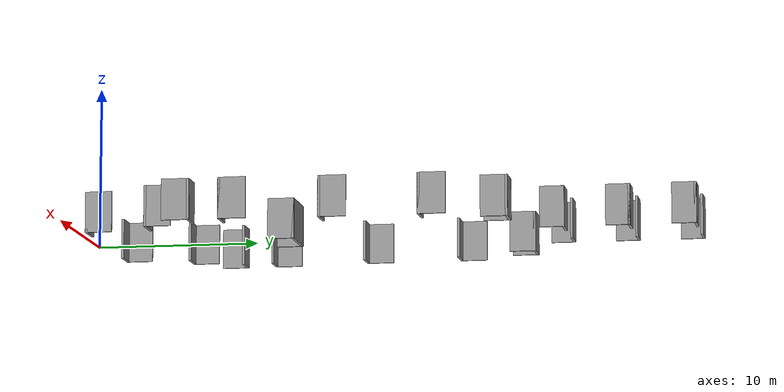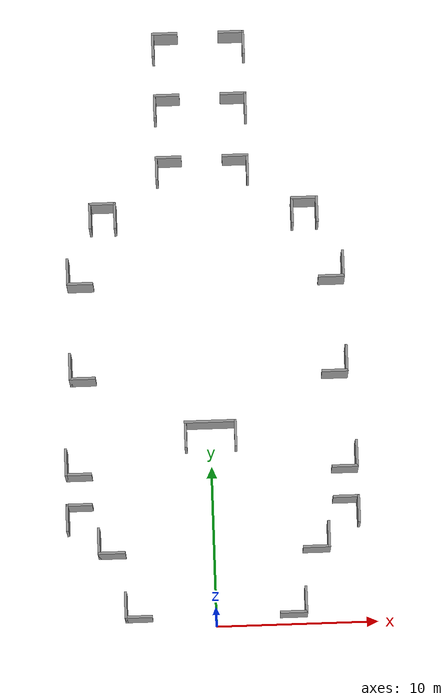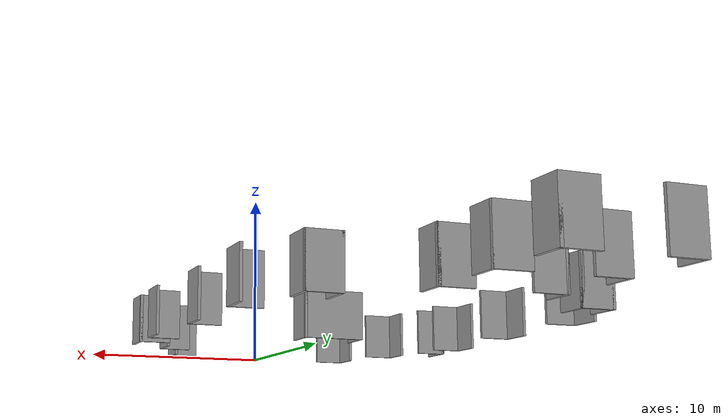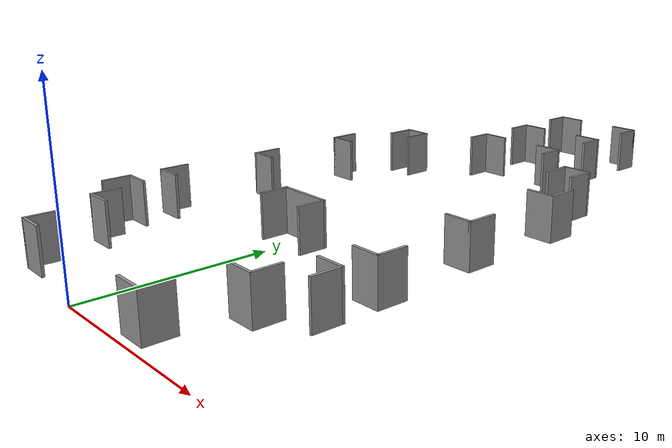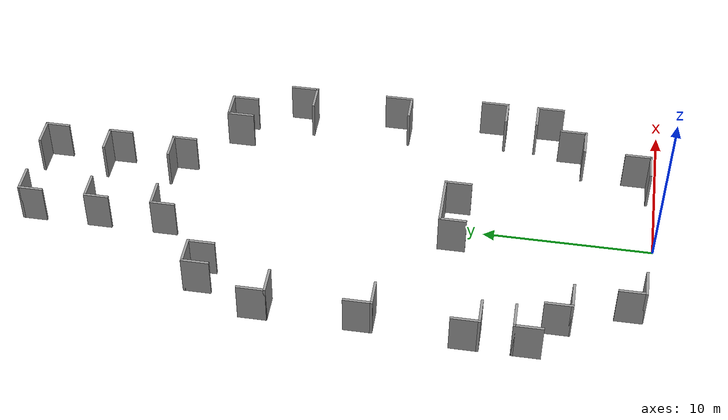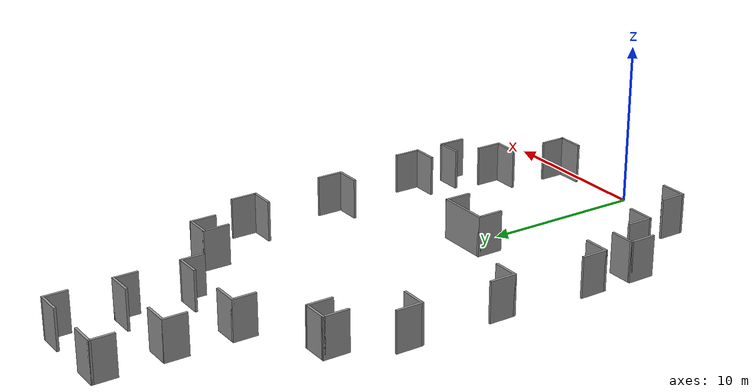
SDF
<?xml version='1.0'?>
<sdf version='1.6'>
  <model name='hospital_restriction_walls'>
    <pose frame=''>0 18.925 0 0 -0 0</pose>
    <link name='Wall_10'>
      <collision name='Wall_10_Collision'>
        <geometry>
          <box>
            <size>1.7 0.15 2.5</size>
          </box>
        </geometry>
        <pose frame=''>0 0 1.25 0 -0 0</pose>
      </collision>
      <visual name='Wall_10_Visual'>
        <pose frame=''>0 0 1.25 0 -0 0</pose>
        <geometry>
          <box>
            <size>1.7 0.15 2.5</size>
          </box>
        </geometry>
        <material>
          <script>
            <uri>file://media/materials/scripts/gazebo.material</uri>
            <name>Gazebo/Grey</name>
          </script>
          <ambient>1 1 1 1</ambient>
        </material>
        <meta>
          <layer>0</layer>
        </meta>
      </visual>
      <pose frame=''>4.775 -18.425 0 0 -0 3.14159</pose>
    </link>
    <link name='Wall_12'>
      <collision name='Wall_12_Collision'>
        <geometry>
          <box>
            <size>1.65 0.15 2.5</size>
          </box>
        </geometry>
        <pose frame=''>0 0 1.25 0 -0 0</pose>
      </collision>
      <visual name='Wall_12_Visual'>
        <pose frame=''>0 0 1.25 0 -0 0</pose>
        <geometry>
          <box>
            <size>1.65 0.15 2.5</size>
          </box>
        </geometry>
        <material>
          <script>
            <uri>file://media/materials/scripts/gazebo.material</uri>
            <name>Gazebo/Grey</name>
          </script>
          <ambient>1 1 1 1</ambient>
        </material>
        <meta>
          <layer>0</layer>
        </meta>
      </visual>
      <pose frame=''>-7.1 -13.675 0 0 -0 1.5708</pose>
    </link>
    <link name='Wall_14'>
      <collision name='Wall_14_Collision'>
        <geometry>
          <box>
            <size>1.7 0.15 2.5</size>
          </box>
        </geometry>
        <pose frame=''>0 0 1.25 0 -0 0</pose>
      </collision>
      <visual name='Wall_14_Visual'>
        <pose frame=''>0 0 1.25 0 -0 0</pose>
        <geometry>
          <box>
            <size>1.7 0.15 2.5</size>
          </box>
        </geometry>
        <material>
          <script>
            <uri>file://media/materials/scripts/gazebo.material</uri>
            <name>Gazebo/Grey</name>
          </script>
          <ambient>1 1 1 1</ambient>
        </material>
        <meta>
          <layer>0</layer>
        </meta>
      </visual>
      <pose frame=''>-6.325 -14.425 0 0 -0 0</pose>
    </link>
    <link name='Wall_16'>
      <collision name='Wall_16_Collision'>
        <geometry>
          <box>
            <size>1.65 0.15 2.5</size>
          </box>
        </geometry>
        <pose frame=''>0 0 1.25 0 -0 0</pose>
      </collision>
      <visual name='Wall_16_Visual'>
        <pose frame=''>0 0 1.25 0 -0 0</pose>
        <geometry>
          <box>
            <size>1.65 0.15 2.5</size>
          </box>
        </geometry>
        <material>
          <script>
            <uri>file://media/materials/scripts/gazebo.material</uri>
            <name>Gazebo/Grey</name>
          </script>
          <ambient>1 1 1 1</ambient>
        </material>
        <meta>
          <layer>0</layer>
        </meta>
      </visual>
      <pose frame=''>7.1 -13.675 0 0 -0 1.5708</pose>
    </link>
    <link name='Wall_18'>
      <collision name='Wall_18_Collision'>
        <geometry>
          <box>
            <size>1.7 0.15 2.5</size>
          </box>
        </geometry>
        <pose frame=''>0 0 1.25 0 -0 0</pose>
      </collision>
      <visual name='Wall_18_Visual'>
        <pose frame=''>0 0 1.25 0 -0 0</pose>
        <geometry>
          <box>
            <size>1.7 0.15 2.5</size>
          </box>
        </geometry>
        <material>
          <script>
            <uri>file://media/materials/scripts/gazebo.material</uri>
            <name>Gazebo/Grey</name>
          </script>
          <ambient>1 1 1 1</ambient>
        </material>
        <meta>
          <layer>0</layer>
        </meta>
      </visual>
      <pose frame=''>6.325 -14.425 0 0 -0 3.14159</pose>
    </link>
    <link name='Wall_20'>
      <collision name='Wall_20_Collision'>
        <geometry>
          <box>
            <size>1.7 0.15 2.5</size>
          </box>
        </geometry>
        <pose frame=''>0 0 1.25 0 -0 0</pose>
      </collision>
      <visual name='Wall_20_Visual'>
        <pose frame=''>0 0 1.25 0 -0 0</pose>
        <geometry>
          <box>
            <size>1.7 0.15 2.5</size>
          </box>
        </geometry>
        <material>
          <script>
            <uri>file://media/materials/scripts/gazebo.material</uri>
            <name>Gazebo/Grey</name>
          </script>
          <ambient>1 1 1 1</ambient>
        </material>
        <meta>
          <layer>0</layer>
        </meta>
      </visual>
      <pose frame=''>-9 -12.15 0 0 -0 1.5708</pose>
    </link>
    <link name='Wall_22'>
      <collision name='Wall_22_Collision'>
        <geometry>
          <box>
            <size>1.65 0.15 2.5</size>
          </box>
        </geometry>
        <pose frame=''>0 0 1.25 0 -0 0</pose>
      </collision>
      <visual name='Wall_22_Visual'>
        <pose frame=''>0 0 1.25 0 -0 0</pose>
        <geometry>
          <box>
            <size>1.65 0.15 2.5</size>
          </box>
        </geometry>
        <material>
          <script>
            <uri>file://media/materials/scripts/gazebo.material</uri>
            <name>Gazebo/Grey</name>
          </script>
          <ambient>1 1 1 1</ambient>
        </material>
        <meta>
          <layer>0</layer>
        </meta>
      </visual>
      <pose frame=''>-8.25 -11.375 0 0 -0 0</pose>
    </link>
    <link name='Wall_24'>
      <collision name='Wall_24_Collision'>
        <geometry>
          <box>
            <size>1.7 0.15 2.5</size>
          </box>
        </geometry>
        <pose frame=''>0 0 1.25 0 -0 0</pose>
      </collision>
      <visual name='Wall_24_Visual'>
        <pose frame=''>0 0 1.25 0 -0 0</pose>
        <geometry>
          <box>
            <size>1.7 0.15 2.5</size>
          </box>
        </geometry>
        <material>
          <script>
            <uri>file://media/materials/scripts/gazebo.material</uri>
            <name>Gazebo/Grey</name>
          </script>
          <ambient>1 1 1 1</ambient>
        </material>
        <meta>
          <layer>0</layer>
        </meta>
      </visual>
      <pose frame=''>-9 -8.7 0 0 -0 1.5708</pose>
    </link>
    <link name='Wall_26'>
      <collision name='Wall_26_Collision'>
        <geometry>
          <box>
            <size>1.65 0.15 2.5</size>
          </box>
        </geometry>
        <pose frame=''>0 0 1.25 0 -0 0</pose>
      </collision>
      <visual name='Wall_26_Visual'>
        <pose frame=''>0 0 1.25 0 -0 0</pose>
        <geometry>
          <box>
            <size>1.65 0.15 2.5</size>
          </box>
        </geometry>
        <material>
          <script>
            <uri>file://media/materials/scripts/gazebo.material</uri>
            <name>Gazebo/Grey</name>
          </script>
          <ambient>1 1 1 1</ambient>
        </material>
        <meta>
          <layer>0</layer>
        </meta>
      </visual>
      <pose frame=''>-8.25 -9.475 0 0 -0 0</pose>
    </link>
    <link name='Wall_28'>
      <collision name='Wall_28_Collision'>
        <geometry>
          <box>
            <size>1.7 0.15 2.5</size>
          </box>
        </geometry>
        <pose frame=''>0 0 1.25 0 -0 0</pose>
      </collision>
      <visual name='Wall_28_Visual'>
        <pose frame=''>0 0 1.25 0 -0 0</pose>
        <geometry>
          <box>
            <size>1.7 0.15 2.5</size>
          </box>
        </geometry>
        <material>
          <script>
            <uri>file://media/materials/scripts/gazebo.material</uri>
            <name>Gazebo/Grey</name>
          </script>
          <ambient>1 1 1 1</ambient>
        </material>
        <meta>
          <layer>0</layer>
        </meta>
      </visual>
      <pose frame=''>9 -8.7 0 0 -0 1.5708</pose>
    </link>
    <link name='Wall_30'>
      <collision name='Wall_30_Collision'>
        <geometry>
          <box>
            <size>1.65 0.15 2.5</size>
          </box>
        </geometry>
        <pose frame=''>0 0 1.25 0 -0 0</pose>
      </collision>
      <visual name='Wall_30_Visual'>
        <pose frame=''>0 0 1.25 0 -0 0</pose>
        <geometry>
          <box>
            <size>1.65 0.15 2.5</size>
          </box>
        </geometry>
        <material>
          <script>
            <uri>file://media/materials/scripts/gazebo.material</uri>
            <name>Gazebo/Grey</name>
          </script>
          <ambient>1 1 1 1</ambient>
        </material>
        <meta>
          <layer>0</layer>
        </meta>
      </visual>
      <pose frame=''>8.25 -9.475 0 0 -0 3.14159</pose>
    </link>
    <link name='Wall_32'>
      <collision name='Wall_32_Collision'>
        <geometry>
          <box>
            <size>1.7 0.15 2.5</size>
          </box>
        </geometry>
        <pose frame=''>0 0 1.25 0 -0 0</pose>
      </collision>
      <visual name='Wall_32_Visual'>
        <pose frame=''>0 0 1.25 0 -0 0</pose>
        <geometry>
          <box>
            <size>1.7 0.15 2.5</size>
          </box>
        </geometry>
        <material>
          <script>
            <uri>file://media/materials/scripts/gazebo.material</uri>
            <name>Gazebo/Grey</name>
          </script>
          <ambient>1 1 1 1</ambient>
        </material>
        <meta>
          <layer>0</layer>
        </meta>
      </visual>
      <pose frame=''>9 -12.15 0 0 -0 1.5708</pose>
    </link>
    <link name='Wall_34'>
      <collision name='Wall_34_Collision'>
        <geometry>
          <box>
            <size>1.65 0.15 2.5</size>
          </box>
        </geometry>
        <pose frame=''>0 0 1.25 0 -0 0</pose>
      </collision>
      <visual name='Wall_34_Visual'>
        <pose frame=''>0 0 1.25 0 -0 0</pose>
        <geometry>
          <box>
            <size>1.65 0.15 2.5</size>
          </box>
        </geometry>
        <material>
          <script>
            <uri>file://media/materials/scripts/gazebo.material</uri>
            <name>Gazebo/Grey</name>
          </script>
          <ambient>1 1 1 1</ambient>
        </material>
        <meta>
          <layer>0</layer>
        </meta>
      </visual>
      <pose frame=''>8.25 -11.375 0 0 -0 0</pose>
    </link>
    <link name='Wall_36'>
      <collision name='Wall_36_Collision'>
        <geometry>
          <box>
            <size>1.65 0.15 2.5</size>
          </box>
        </geometry>
        <pose frame=''>0 0 1.25 0 -0 0</pose>
      </collision>
      <visual name='Wall_36_Visual'>
        <pose frame=''>0 0 1.25 0 -0 0</pose>
        <geometry>
          <box>
            <size>1.65 0.15 2.5</size>
          </box>
        </geometry>
        <material>
          <script>
            <uri>file://media/materials/scripts/gazebo.material</uri>
            <name>Gazebo/Grey</name>
          </script>
          <ambient>1 1 1 1</ambient>
        </material>
        <meta>
          <layer>0</layer>
        </meta>
      </visual>
      <pose frame=''>-1.55 -7.175 0 0 -0 1.5708</pose>
    </link>
    <link name='Wall_38'>
      <collision name='Wall_38_Collision'>
        <geometry>
          <box>
            <size>1.65 0.15 2.5</size>
          </box>
        </geometry>
        <pose frame=''>0 0 1.25 0 -0 0</pose>
      </collision>
      <visual name='Wall_38_Visual'>
        <pose frame=''>0 0 1.25 0 -0 0</pose>
        <geometry>
          <box>
            <size>1.65 0.15 2.5</size>
          </box>
        </geometry>
        <material>
          <script>
            <uri>file://media/materials/scripts/gazebo.material</uri>
            <name>Gazebo/Grey</name>
          </script>
          <ambient>1 1 1 1</ambient>
        </material>
        <meta>
          <layer>0</layer>
        </meta>
      </visual>
      <pose frame=''>1.55 -7.175 0 0 -0 1.5708</pose>
    </link>
    <link name='Wall_4'>
      <collision name='Wall_4_Collision'>
        <geometry>
          <box>
            <size>1.65 0.15 2.5</size>
          </box>
        </geometry>
        <pose frame=''>0 0 1.25 0 -0 0</pose>
      </collision>
      <visual name='Wall_4_Visual'>
        <pose frame=''>0 0 1.25 0 -0 0</pose>
        <geometry>
          <box>
            <size>1.65 0.15 2.5</size>
          </box>
        </geometry>
        <material>
          <script>
            <uri>file://media/materials/scripts/gazebo.material</uri>
            <name>Gazebo/Grey</name>
          </script>
          <ambient>1 1 1 1</ambient>
        </material>
        <meta>
          <layer>0</layer>
        </meta>
      </visual>
      <pose frame=''>-5.55 -17.675 0 0 -0 1.5708</pose>
    </link>
    <link name='Wall_40'>
      <collision name='Wall_40_Collision'>
        <geometry>
          <box>
            <size>3.25 0.15 2.5</size>
          </box>
        </geometry>
        <pose frame=''>0 0 1.25 0 -0 0</pose>
      </collision>
      <visual name='Wall_40_Visual'>
        <pose frame=''>0 0 1.25 0 -0 0</pose>
        <geometry>
          <box>
            <size>3.25 0.15 2.5</size>
          </box>
        </geometry>
        <material>
          <script>
            <uri>file://media/materials/scripts/gazebo.material</uri>
            <name>Gazebo/Grey</name>
          </script>
          <ambient>1 1 1 1</ambient>
        </material>
        <meta>
          <layer>0</layer>
        </meta>
      </visual>
      <pose frame=''>0 -6.425 0 0 -0 0</pose>
    </link>
    <link name='Wall_42'>
      <collision name='Wall_42_Collision'>
        <geometry>
          <box>
            <size>1.65 0.15 2.5</size>
          </box>
        </geometry>
        <pose frame=''>0 0 1.25 0 -0 0</pose>
      </collision>
      <visual name='Wall_42_Visual'>
        <pose frame=''>0 0 1.25 0 -0 0</pose>
        <geometry>
          <box>
            <size>1.65 0.15 2.5</size>
          </box>
        </geometry>
        <material>
          <script>
            <uri>file://media/materials/scripts/gazebo.material</uri>
            <name>Gazebo/Grey</name>
          </script>
          <ambient>1 1 1 1</ambient>
        </material>
        <meta>
          <layer>0</layer>
        </meta>
      </visual>
      <pose frame=''>-7.85 -3.475 0 0 -0 0</pose>
    </link>
    <link name='Wall_44'>
      <collision name='Wall_44_Collision'>
        <geometry>
          <box>
            <size>1.7 0.15 2.5</size>
          </box>
        </geometry>
        <pose frame=''>0 0 1.25 0 -0 0</pose>
      </collision>
      <visual name='Wall_44_Visual'>
        <pose frame=''>0 0 1.25 0 -0 0</pose>
        <geometry>
          <box>
            <size>1.7 0.15 2.5</size>
          </box>
        </geometry>
        <material>
          <script>
            <uri>file://media/materials/scripts/gazebo.material</uri>
            <name>Gazebo/Grey</name>
          </script>
          <ambient>1 1 1 1</ambient>
        </material>
        <meta>
          <layer>0</layer>
        </meta>
      </visual>
      <pose frame=''>-8.6 -2.7 0 0 -0 1.5708</pose>
    </link>
    <link name='Wall_46'>
      <collision name='Wall_46_Collision'>
        <geometry>
          <box>
            <size>1.7 0.15 2.5</size>
          </box>
        </geometry>
        <pose frame=''>0 0 1.25 0 -0 0</pose>
      </collision>
      <visual name='Wall_46_Visual'>
        <pose frame=''>0 0 1.25 0 -0 0</pose>
        <geometry>
          <box>
            <size>1.7 0.15 2.5</size>
          </box>
        </geometry>
        <material>
          <script>
            <uri>file://media/materials/scripts/gazebo.material</uri>
            <name>Gazebo/Grey</name>
          </script>
          <ambient>1 1 1 1</ambient>
        </material>
        <meta>
          <layer>0</layer>
        </meta>
      </visual>
      <pose frame=''>8.6 -2.7 0 0 -0 1.5708</pose>
    </link>
    <link name='Wall_48'>
      <collision name='Wall_48_Collision'>
        <geometry>
          <box>
            <size>1.65 0.15 2.5</size>
          </box>
        </geometry>
        <pose frame=''>0 0 1.25 0 -0 0</pose>
      </collision>
      <visual name='Wall_48_Visual'>
        <pose frame=''>0 0 1.25 0 -0 0</pose>
        <geometry>
          <box>
            <size>1.65 0.15 2.5</size>
          </box>
        </geometry>
        <material>
          <script>
            <uri>file://media/materials/scripts/gazebo.material</uri>
            <name>Gazebo/Grey</name>
          </script>
          <ambient>1 1 1 1</ambient>
        </material>
        <meta>
          <layer>0</layer>
        </meta>
      </visual>
      <pose frame=''>7.85 -3.475 0 0 -0 3.14159</pose>
    </link>
    <link name='Wall_50'>
      <collision name='Wall_50_Collision'>
        <geometry>
          <box>
            <size>1.65 0.15 2.5</size>
          </box>
        </geometry>
        <pose frame=''>0 0 1.25 0 -0 0</pose>
      </collision>
      <visual name='Wall_50_Visual'>
        <pose frame=''>0 0 1.25 0 -0 0</pose>
        <geometry>
          <box>
            <size>1.65 0.15 2.5</size>
          </box>
        </geometry>
        <material>
          <script>
            <uri>file://media/materials/scripts/gazebo.material</uri>
            <name>Gazebo/Grey</name>
          </script>
          <ambient>1 1 1 1</ambient>
        </material>
        <meta>
          <layer>0</layer>
        </meta>
      </visual>
      <pose frame=''>-7.85 2.525 0 0 -0 0</pose>
    </link>
    <link name='Wall_52'>
      <collision name='Wall_52_Collision'>
        <geometry>
          <box>
            <size>1.7 0.15 2.5</size>
          </box>
        </geometry>
        <pose frame=''>0 0 1.25 0 -0 0</pose>
      </collision>
      <visual name='Wall_52_Visual'>
        <pose frame=''>0 0 1.25 0 -0 0</pose>
        <geometry>
          <box>
            <size>1.7 0.15 2.5</size>
          </box>
        </geometry>
        <material>
          <script>
            <uri>file://media/materials/scripts/gazebo.material</uri>
            <name>Gazebo/Grey</name>
          </script>
          <ambient>1 1 1 1</ambient>
        </material>
        <meta>
          <layer>0</layer>
        </meta>
      </visual>
      <pose frame=''>-8.6 3.3 0 0 -0 1.5708</pose>
    </link>
    <link name='Wall_54'>
      <collision name='Wall_54_Collision'>
        <geometry>
          <box>
            <size>1.65 0.15 2.5</size>
          </box>
        </geometry>
        <pose frame=''>0 0 1.25 0 -0 0</pose>
      </collision>
      <visual name='Wall_54_Visual'>
        <pose frame=''>0 0 1.25 0 -0 0</pose>
        <geometry>
          <box>
            <size>1.65 0.15 2.5</size>
          </box>
        </geometry>
        <material>
          <script>
            <uri>file://media/materials/scripts/gazebo.material</uri>
            <name>Gazebo/Grey</name>
          </script>
          <ambient>1 1 1 1</ambient>
        </material>
        <meta>
          <layer>0</layer>
        </meta>
      </visual>
      <pose frame=''>7.85 2.525 0 0 -0 3.14159</pose>
    </link>
    <link name='Wall_56'>
      <collision name='Wall_56_Collision'>
        <geometry>
          <box>
            <size>1.7 0.15 2.5</size>
          </box>
        </geometry>
        <pose frame=''>0 0 1.25 0 -0 0</pose>
      </collision>
      <visual name='Wall_56_Visual'>
        <pose frame=''>0 0 1.25 0 -0 0</pose>
        <geometry>
          <box>
            <size>1.7 0.15 2.5</size>
          </box>
        </geometry>
        <material>
          <script>
            <uri>file://media/materials/scripts/gazebo.material</uri>
            <name>Gazebo/Grey</name>
          </script>
          <ambient>1 1 1 1</ambient>
        </material>
        <meta>
          <layer>0</layer>
        </meta>
      </visual>
      <pose frame=''>8.6 3.3 0 0 -0 1.5708</pose>
    </link>
    <link name='Wall_58'>
      <collision name='Wall_58_Collision'>
        <geometry>
          <box>
            <size>1.65 0.15 2.5</size>
          </box>
        </geometry>
        <pose frame=''>0 0 1.25 0 -0 0</pose>
      </collision>
      <visual name='Wall_58_Visual'>
        <pose frame=''>0 0 1.25 0 -0 0</pose>
        <geometry>
          <box>
            <size>1.65 0.15 2.5</size>
          </box>
        </geometry>
        <material>
          <script>
            <uri>file://media/materials/scripts/gazebo.material</uri>
            <name>Gazebo/Grey</name>
          </script>
          <ambient>1 1 1 1</ambient>
        </material>
        <meta>
          <layer>0</layer>
        </meta>
      </visual>
      <pose frame=''>-7.1 6.825 0 0 -0 1.5708</pose>
    </link>
    <link name='Wall_6'>
      <collision name='Wall_6_Collision'>
        <geometry>
          <box>
            <size>1.7 0.15 2.5</size>
          </box>
        </geometry>
        <pose frame=''>0 0 1.25 0 -0 0</pose>
      </collision>
      <visual name='Wall_6_Visual'>
        <pose frame=''>0 0 1.25 0 -0 0</pose>
        <geometry>
          <box>
            <size>1.7 0.15 2.5</size>
          </box>
        </geometry>
        <material>
          <script>
            <uri>file://media/materials/scripts/gazebo.material</uri>
            <name>Gazebo/Grey</name>
          </script>
          <ambient>1 1 1 1</ambient>
        </material>
        <meta>
          <layer>0</layer>
        </meta>
      </visual>
      <pose frame=''>-4.775 -18.425 0 0 -0 0</pose>
    </link>
    <link name='Wall_60'>
      <collision name='Wall_60_Collision'>
        <geometry>
          <box>
            <size>1.7 0.15 2.5</size>
          </box>
        </geometry>
        <pose frame=''>0 0 1.25 0 -0 0</pose>
      </collision>
      <visual name='Wall_60_Visual'>
        <pose frame=''>0 0 1.25 0 -0 0</pose>
        <geometry>
          <box>
            <size>1.7 0.15 2.5</size>
          </box>
        </geometry>
        <material>
          <script>
            <uri>file://media/materials/scripts/gazebo.material</uri>
            <name>Gazebo/Grey</name>
          </script>
          <ambient>1 1 1 1</ambient>
        </material>
        <meta>
          <layer>0</layer>
        </meta>
      </visual>
      <pose frame=''>-6.325 7.575 0 0 -0 0</pose>
    </link>
    <link name='Wall_62'>
      <collision name='Wall_62_Collision'>
        <geometry>
          <box>
            <size>1.65 0.15 2.5</size>
          </box>
        </geometry>
        <pose frame=''>0 0 1.25 0 -0 0</pose>
      </collision>
      <visual name='Wall_62_Visual'>
        <pose frame=''>0 0 1.25 0 -0 0</pose>
        <geometry>
          <box>
            <size>1.65 0.15 2.5</size>
          </box>
        </geometry>
        <material>
          <script>
            <uri>file://media/materials/scripts/gazebo.material</uri>
            <name>Gazebo/Grey</name>
          </script>
          <ambient>1 1 1 1</ambient>
        </material>
        <meta>
          <layer>0</layer>
        </meta>
      </visual>
      <pose frame=''>-5.55 6.825 0 0 -0 -1.5708</pose>
    </link>
    <link name='Wall_64'>
      <collision name='Wall_64_Collision'>
        <geometry>
          <box>
            <size>1.65 0.15 2.5</size>
          </box>
        </geometry>
        <pose frame=''>0 0 1.25 0 -0 0</pose>
      </collision>
      <visual name='Wall_64_Visual'>
        <pose frame=''>0 0 1.25 0 -0 0</pose>
        <geometry>
          <box>
            <size>1.65 0.15 2.5</size>
          </box>
        </geometry>
        <material>
          <script>
            <uri>file://media/materials/scripts/gazebo.material</uri>
            <name>Gazebo/Grey</name>
          </script>
          <ambient>1 1 1 1</ambient>
        </material>
        <meta>
          <layer>0</layer>
        </meta>
      </visual>
      <pose frame=''>7.1 6.825 0 0 -0 1.5708</pose>
    </link>
    <link name='Wall_66'>
      <collision name='Wall_66_Collision'>
        <geometry>
          <box>
            <size>1.65 0.15 2.5</size>
          </box>
        </geometry>
        <pose frame=''>0 0 1.25 0 -0 0</pose>
      </collision>
      <visual name='Wall_66_Visual'>
        <pose frame=''>0 0 1.25 0 -0 0</pose>
        <geometry>
          <box>
            <size>1.65 0.15 2.5</size>
          </box>
        </geometry>
        <material>
          <script>
            <uri>file://media/materials/scripts/gazebo.material</uri>
            <name>Gazebo/Grey</name>
          </script>
          <ambient>1 1 1 1</ambient>
        </material>
        <meta>
          <layer>0</layer>
        </meta>
      </visual>
      <pose frame=''>5.55 6.825 0 0 -0 1.5708</pose>
    </link>
    <link name='Wall_68'>
      <collision name='Wall_68_Collision'>
        <geometry>
          <box>
            <size>1.7 0.15 2.5</size>
          </box>
        </geometry>
        <pose frame=''>0 0 1.25 0 -0 0</pose>
      </collision>
      <visual name='Wall_68_Visual'>
        <pose frame=''>0 0 1.25 0 -0 0</pose>
        <geometry>
          <box>
            <size>1.7 0.15 2.5</size>
          </box>
        </geometry>
        <material>
          <script>
            <uri>file://media/materials/scripts/gazebo.material</uri>
            <name>Gazebo/Grey</name>
          </script>
          <ambient>1 1 1 1</ambient>
        </material>
        <meta>
          <layer>0</layer>
        </meta>
      </visual>
      <pose frame=''>6.325 7.575 0 0 -0 0</pose>
    </link>
    <link name='Wall_70'>
      <collision name='Wall_70_Collision'>
        <geometry>
          <box>
            <size>1.5 0.15 2.5</size>
          </box>
        </geometry>
        <pose frame=''>0 0 1.25 0 -0 0</pose>
      </collision>
      <visual name='Wall_70_Visual'>
        <pose frame=''>0 0 1.25 0 -0 0</pose>
        <geometry>
          <box>
            <size>1.5 0.15 2.5</size>
          </box>
        </geometry>
        <material>
          <script>
            <uri>file://media/materials/scripts/gazebo.material</uri>
            <name>Gazebo/Grey</name>
          </script>
          <ambient>1 1 1 1</ambient>
        </material>
        <meta>
          <layer>0</layer>
        </meta>
      </visual>
      <pose frame=''>-2.85 9.75 0 0 -0 1.5708</pose>
    </link>
    <link name='Wall_72'>
      <collision name='Wall_72_Collision'>
        <geometry>
          <box>
            <size>1.65 0.15 2.5</size>
          </box>
        </geometry>
        <pose frame=''>0 0 1.25 0 -0 0</pose>
      </collision>
      <visual name='Wall_72_Visual'>
        <pose frame=''>0 0 1.25 0 -0 0</pose>
        <geometry>
          <box>
            <size>1.65 0.15 2.5</size>
          </box>
        </geometry>
        <material>
          <script>
            <uri>file://media/materials/scripts/gazebo.material</uri>
            <name>Gazebo/Grey</name>
          </script>
          <ambient>1 1 1 1</ambient>
        </material>
        <meta>
          <layer>0</layer>
        </meta>
      </visual>
      <pose frame=''>-2.1 10.425 0 0 -0 0</pose>
    </link>
    <link name='Wall_74'>
      <collision name='Wall_74_Collision'>
        <geometry>
          <box>
            <size>1.5 0.15 2.5</size>
          </box>
        </geometry>
        <pose frame=''>0 0 1.25 0 -0 0</pose>
      </collision>
      <visual name='Wall_74_Visual'>
        <pose frame=''>0 0 1.25 0 -0 0</pose>
        <geometry>
          <box>
            <size>1.5 0.15 2.5</size>
          </box>
        </geometry>
        <material>
          <script>
            <uri>file://media/materials/scripts/gazebo.material</uri>
            <name>Gazebo/Grey</name>
          </script>
          <ambient>1 1 1 1</ambient>
        </material>
        <meta>
          <layer>0</layer>
        </meta>
      </visual>
      <pose frame=''>2.85 9.75 0 0 -0 1.5708</pose>
    </link>
    <link name='Wall_76'>
      <collision name='Wall_76_Collision'>
        <geometry>
          <box>
            <size>1.65 0.15 2.5</size>
          </box>
        </geometry>
        <pose frame=''>0 0 1.25 0 -0 0</pose>
      </collision>
      <visual name='Wall_76_Visual'>
        <pose frame=''>0 0 1.25 0 -0 0</pose>
        <geometry>
          <box>
            <size>1.65 0.15 2.5</size>
          </box>
        </geometry>
        <material>
          <script>
            <uri>file://media/materials/scripts/gazebo.material</uri>
            <name>Gazebo/Grey</name>
          </script>
          <ambient>1 1 1 1</ambient>
        </material>
        <meta>
          <layer>0</layer>
        </meta>
      </visual>
      <pose frame=''>2.1 10.425 0 0 -0 0</pose>
    </link>
    <link name='Wall_78'>
      <collision name='Wall_78_Collision'>
        <geometry>
          <box>
            <size>1.5 0.15 2.5</size>
          </box>
        </geometry>
        <pose frame=''>0 0 1.25 0 -0 0</pose>
      </collision>
      <visual name='Wall_78_Visual'>
        <pose frame=''>0 0 1.25 0 -0 0</pose>
        <geometry>
          <box>
            <size>1.5 0.15 2.5</size>
          </box>
        </geometry>
        <material>
          <script>
            <uri>file://media/materials/scripts/gazebo.material</uri>
            <name>Gazebo/Grey</name>
          </script>
          <ambient>1 1 1 1</ambient>
        </material>
        <meta>
          <layer>0</layer>
        </meta>
      </visual>
      <pose frame=''>2.85 13.75 0 0 -0 1.5708</pose>
    </link>
    <link name='Wall_8'>
      <collision name='Wall_8_Collision'>
        <geometry>
          <box>
            <size>1.65 0.15 2.5</size>
          </box>
        </geometry>
        <pose frame=''>0 0 1.25 0 -0 0</pose>
      </collision>
      <visual name='Wall_8_Visual'>
        <pose frame=''>0 0 1.25 0 -0 0</pose>
        <geometry>
          <box>
            <size>1.65 0.15 2.5</size>
          </box>
        </geometry>
        <material>
          <script>
            <uri>file://media/materials/scripts/gazebo.material</uri>
            <name>Gazebo/Grey</name>
          </script>
          <ambient>1 1 1 1</ambient>
        </material>
        <meta>
          <layer>0</layer>
        </meta>
      </visual>
      <pose frame=''>5.55 -17.675 0 0 -0 1.5708</pose>
    </link>
    <link name='Wall_80'>
      <collision name='Wall_80_Collision'>
        <geometry>
          <box>
            <size>1.65 0.15 2.5</size>
          </box>
        </geometry>
        <pose frame=''>0 0 1.25 0 -0 0</pose>
      </collision>
      <visual name='Wall_80_Visual'>
        <pose frame=''>0 0 1.25 0 -0 0</pose>
        <geometry>
          <box>
            <size>1.65 0.15 2.5</size>
          </box>
        </geometry>
        <material>
          <script>
            <uri>file://media/materials/scripts/gazebo.material</uri>
            <name>Gazebo/Grey</name>
          </script>
          <ambient>1 1 1 1</ambient>
        </material>
        <meta>
          <layer>0</layer>
        </meta>
      </visual>
      <pose frame=''>2.1 14.425 0 0 -0 3.14159</pose>
    </link>
    <link name='Wall_82'>
      <collision name='Wall_82_Collision'>
        <geometry>
          <box>
            <size>1.5 0.15 2.5</size>
          </box>
        </geometry>
        <pose frame=''>0 0 1.25 0 -0 0</pose>
      </collision>
      <visual name='Wall_82_Visual'>
        <pose frame=''>0 0 1.25 0 -0 0</pose>
        <geometry>
          <box>
            <size>1.5 0.15 2.5</size>
          </box>
        </geometry>
        <material>
          <script>
            <uri>file://media/materials/scripts/gazebo.material</uri>
            <name>Gazebo/Grey</name>
          </script>
          <ambient>1 1 1 1</ambient>
        </material>
        <meta>
          <layer>0</layer>
        </meta>
      </visual>
      <pose frame=''>-2.85 13.75 0 0 -0 1.5708</pose>
    </link>
    <link name='Wall_84'>
      <collision name='Wall_84_Collision'>
        <geometry>
          <box>
            <size>1.65 0.15 2.5</size>
          </box>
        </geometry>
        <pose frame=''>0 0 1.25 0 -0 0</pose>
      </collision>
      <visual name='Wall_84_Visual'>
        <pose frame=''>0 0 1.25 0 -0 0</pose>
        <geometry>
          <box>
            <size>1.65 0.15 2.5</size>
          </box>
        </geometry>
        <material>
          <script>
            <uri>file://media/materials/scripts/gazebo.material</uri>
            <name>Gazebo/Grey</name>
          </script>
          <ambient>1 1 1 1</ambient>
        </material>
        <meta>
          <layer>0</layer>
        </meta>
      </visual>
      <pose frame=''>-2.1 14.425 0 0 -0 3.14159</pose>
    </link>
    <link name='Wall_86'>
      <collision name='Wall_86_Collision'>
        <geometry>
          <box>
            <size>1.65 0.15 2.5</size>
          </box>
        </geometry>
        <pose frame=''>0 0 1.25 0 -0 0</pose>
      </collision>
      <visual name='Wall_86_Visual'>
        <pose frame=''>0 0 1.25 0 -0 0</pose>
        <geometry>
          <box>
            <size>1.65 0.15 2.5</size>
          </box>
        </geometry>
        <material>
          <script>
            <uri>file://media/materials/scripts/gazebo.material</uri>
            <name>Gazebo/Grey</name>
          </script>
          <ambient>1 1 1 1</ambient>
        </material>
        <meta>
          <layer>0</layer>
        </meta>
      </visual>
      <pose frame=''>-2.1 18.425 0 0 -0 3.14159</pose>
    </link>
    <link name='Wall_88'>
      <collision name='Wall_88_Collision'>
        <geometry>
          <box>
            <size>1.5 0.15 2.5</size>
          </box>
        </geometry>
        <pose frame=''>0 0 1.25 0 -0 0</pose>
      </collision>
      <visual name='Wall_88_Visual'>
        <pose frame=''>0 0 1.25 0 -0 0</pose>
        <geometry>
          <box>
            <size>1.5 0.15 2.5</size>
          </box>
        </geometry>
        <material>
          <script>
            <uri>file://media/materials/scripts/gazebo.material</uri>
            <name>Gazebo/Grey</name>
          </script>
          <ambient>1 1 1 1</ambient>
        </material>
        <meta>
          <layer>0</layer>
        </meta>
      </visual>
      <pose frame=''>-2.85 17.75 0 0 -0 -1.5708</pose>
    </link>
    <link name='Wall_90'>
      <collision name='Wall_90_Collision'>
        <geometry>
          <box>
            <size>1.5 0.15 2.5</size>
          </box>
        </geometry>
        <pose frame=''>0 0 1.25 0 -0 0</pose>
      </collision>
      <visual name='Wall_90_Visual'>
        <pose frame=''>0 0 1.25 0 -0 0</pose>
        <geometry>
          <box>
            <size>1.5 0.15 2.5</size>
          </box>
        </geometry>
        <material>
          <script>
            <uri>file://media/materials/scripts/gazebo.material</uri>
            <name>Gazebo/Grey</name>
          </script>
          <ambient>1 1 1 1</ambient>
        </material>
        <meta>
          <layer>0</layer>
        </meta>
      </visual>
      <pose frame=''>2.85 17.75 0 0 -0 -1.5708</pose>
    </link>
    <link name='Wall_92'>
      <collision name='Wall_92_Collision'>
        <geometry>
          <box>
            <size>1.65 0.15 2.5</size>
          </box>
        </geometry>
        <pose frame=''>0 0 1.25 0 -0 0</pose>
      </collision>
      <visual name='Wall_92_Visual'>
        <pose frame=''>0 0 1.25 0 -0 0</pose>
        <geometry>
          <box>
            <size>1.65 0.15 2.5</size>
          </box>
        </geometry>
        <material>
          <script>
            <uri>file://media/materials/scripts/gazebo.material</uri>
            <name>Gazebo/Grey</name>
          </script>
          <ambient>1 1 1 1</ambient>
        </material>
        <meta>
          <layer>0</layer>
        </meta>
      </visual>
      <pose frame=''>2.1 18.425 0 0 -0 0</pose>
    </link>
    <static>1</static>
  </model>
</sdf>
